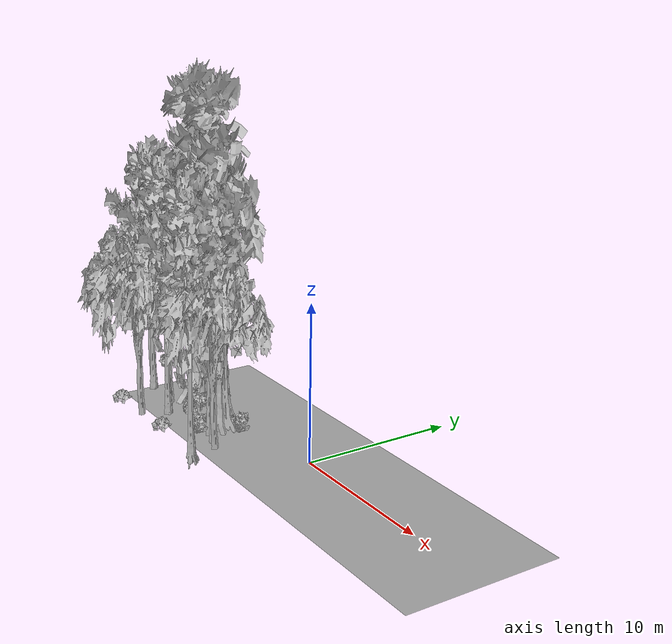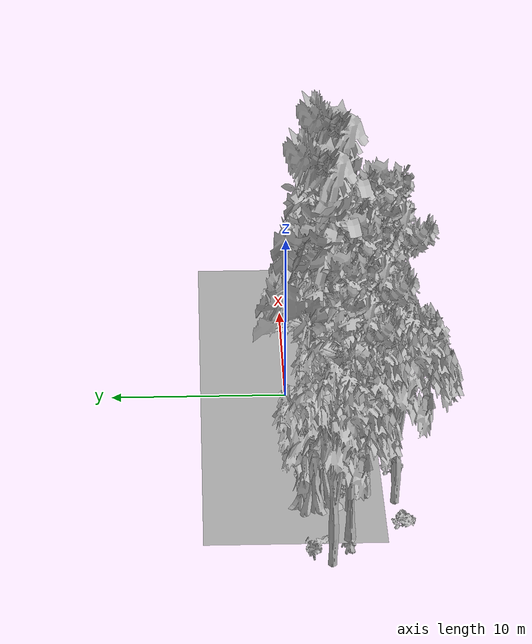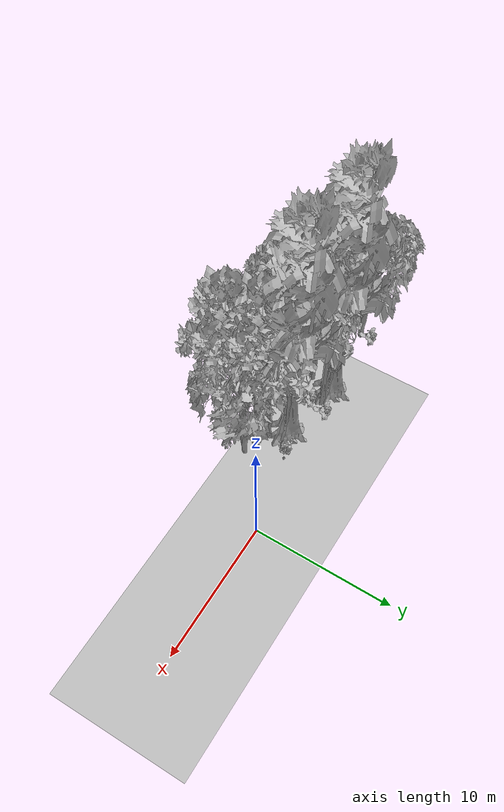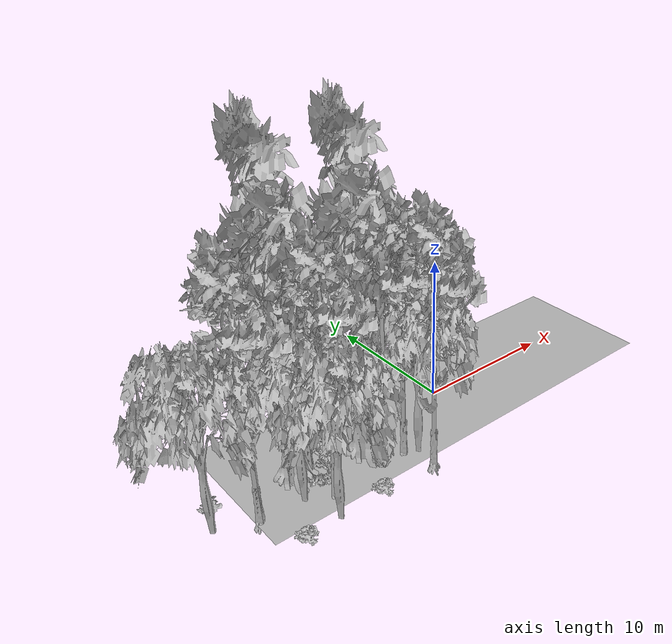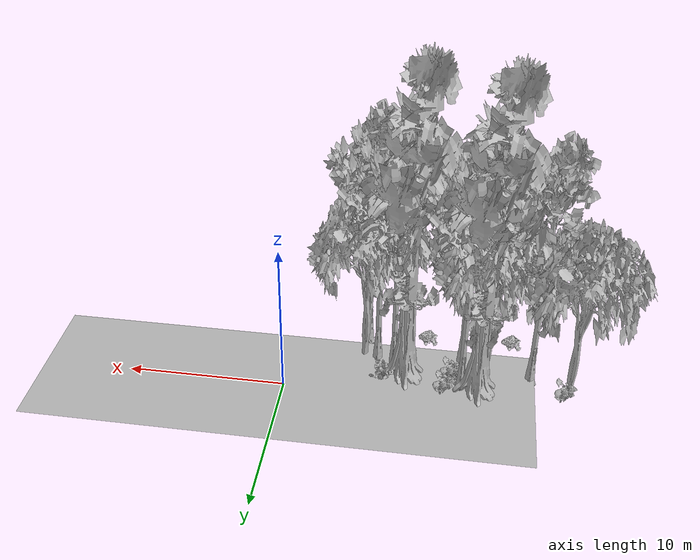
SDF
<sdf version="1.7">
 <world name="default">
  <model name="ground_plane">
   <static>1</static>
   <link name="link">
    <collision name="collision">
     <geometry><plane><normal>0 0 1</normal><size>100 100</size></plane></geometry>
     <surface><contact><ode><min_depth>0.01</min_depth><max_vel>0</max_vel></ode></contact></surface>
    </collision>
    <visual name="grass">
     <cast_shadows>0</cast_shadows>
     <geometry>
      <mesh>
       <scale>0.5814285714285714 0.18142857142857144 0.1</scale>
       <uri>file://grass_plane/meshes/grass_plane.dae</uri>
      </mesh>
     </geometry>
    </visual>
   </link>
  </model>
  <model name="Tree 2">
   <static>1</static>
   <pose>-11.0649128909362 -1.3359658038042035 0 1.57079 -0 0</pose>
   <link name="link">
    <collision name="collision">
     <geometry><mesh><scale>3.5 5 3.5</scale><uri>model://tree_9/meshes/tree_9.obj</uri></mesh></geometry>
    </collision>
    <visual name="visual">
     <geometry><mesh><scale>3.5 5 3.5</scale><uri>model://tree_9/meshes/tree_9.obj</uri></mesh></geometry>
    </visual>
   </link>
  </model>
  <model name="Tree 44">
   <static>1</static>
   <pose>-12.28613080616892 -1.3604573522858825 0 1.57079 -0 0</pose>
   <link name="link">
    <collision name="collision">
     <geometry><mesh><scale>3.5 5 3.5</scale><uri>model://tree_9/meshes/tree_9.obj</uri></mesh></geometry>
    </collision>
    <visual name="visual">
     <geometry><mesh><scale>3.5 5 3.5</scale><uri>model://tree_9/meshes/tree_9.obj</uri></mesh></geometry>
    </visual>
   </link>
  </model>
  <model name="Tree 132">
   <static>1</static>
   <pose>-17.867782301725683 -1.8405493716950563 0 1.57079 -0 0</pose>
   <link name="link">
    <collision name="collision">
     <geometry><mesh><scale>3.5 5 3.5</scale><uri>model://tree_2/meshes/tree_2.obj</uri></mesh></geometry>
    </collision>
    <visual name="visual">
     <geometry><mesh><scale>3.5 5 3.5</scale><uri>model://tree_2/meshes/tree_2.obj</uri></mesh></geometry>
    </visual>
   </link>
  </model>
  <model name="Tree 133">
   <static>1</static>
   <pose>-4.826754633418027 -5.437446782093666 0 1.57079 -0 0</pose>
   <link name="link">
    <collision name="collision">
     <geometry><mesh><scale>3.5 5 3.5</scale><uri>model://tree_9/meshes/tree_9.obj</uri></mesh></geometry>
    </collision>
    <visual name="visual">
     <geometry><mesh><scale>3.5 5 3.5</scale><uri>model://tree_9/meshes/tree_9.obj</uri></mesh></geometry>
    </visual>
   </link>
  </model>
  <model name="Tree 160">
   <static>1</static>
   <pose>-11.871474903291684 -5.495924710658599 0 1.57079 -0 0</pose>
   <link name="link">
    <collision name="collision">
     <geometry><mesh><scale>3.5 5 3.5</scale><uri>model://tree_2/meshes/tree_2.obj</uri></mesh></geometry>
    </collision>
    <visual name="visual">
     <geometry><mesh><scale>3.5 5 3.5</scale><uri>model://tree_2/meshes/tree_2.obj</uri></mesh></geometry>
    </visual>
   </link>
  </model>
  <model name="Tree 161">
   <static>1</static>
   <pose>-4.811960147837411 -3.908333345867618 0 1.57079 -0 0</pose>
   <link name="link">
    <collision name="collision">
     <geometry><mesh><scale>3.5 5 3.5</scale><uri>model://tree_2/meshes/tree_2.obj</uri></mesh></geometry>
    </collision>
    <visual name="visual">
     <geometry><mesh><scale>3.5 5 3.5</scale><uri>model://tree_2/meshes/tree_2.obj</uri></mesh></geometry>
    </visual>
   </link>
  </model>
  <model name="Tree 287">
   <static>1</static>
   <pose>-12.638921503179823 -3.0012000754578576 0 1.57079 -0 0</pose>
   <link name="link">
    <collision name="collision">
     <geometry><mesh><scale>3.5 5 3.5</scale><uri>model://tree_2/meshes/tree_2.obj</uri></mesh></geometry>
    </collision>
    <visual name="visual">
     <geometry><mesh><scale>3.5 5 3.5</scale><uri>model://tree_2/meshes/tree_2.obj</uri></mesh></geometry>
    </visual>
   </link>
  </model>
  <model name="Tree 304">
   <static>1</static>
   <pose>-7.5048635461284405 -1.9546367103184927 0 1.57079 -0 0</pose>
   <link name="link">
    <collision name="collision">
     <geometry><mesh><scale>3.5 5 3.5</scale><uri>model://tree_4/meshes/tree_4.obj</uri></mesh></geometry>
    </collision>
    <visual name="visual">
     <geometry><mesh><scale>3.5 5 3.5</scale><uri>model://tree_4/meshes/tree_4.obj</uri></mesh></geometry>
    </visual>
   </link>
  </model>
  <model name="Tree 338">
   <static>1</static>
   <pose>-12.08945469492415 -1.1157064773826093 0 1.57079 -0 0</pose>
   <link name="link">
    <collision name="collision">
     <geometry><mesh><scale>3.5 5 3.5</scale><uri>model://tree_4/meshes/tree_4.obj</uri></mesh></geometry>
    </collision>
    <visual name="visual">
     <geometry><mesh><scale>3.5 5 3.5</scale><uri>model://tree_4/meshes/tree_4.obj</uri></mesh></geometry>
    </visual>
   </link>
  </model>
  <model name="Tree 372">
   <static>1</static>
   <pose>-15.411677792625902 -2.859662806984229 0 1.57079 -0 0</pose>
   <link name="link">
    <collision name="collision">
     <geometry><mesh><scale>3.5 5 3.5</scale><uri>model://tree_9/meshes/tree_9.obj</uri></mesh></geometry>
    </collision>
    <visual name="visual">
     <geometry><mesh><scale>3.5 5 3.5</scale><uri>model://tree_9/meshes/tree_9.obj</uri></mesh></geometry>
    </visual>
   </link>
  </model>
  <model name="Tree 377">
   <static>1</static>
   <pose>-6.6732439385215585 -3.1676164422022914 0 1.57079 -0 0</pose>
   <link name="link">
    <collision name="collision">
     <geometry><mesh><scale>3.5 5 3.5</scale><uri>model://tree_9/meshes/tree_9.obj</uri></mesh></geometry>
    </collision>
    <visual name="visual">
     <geometry><mesh><scale>3.5 5 3.5</scale><uri>model://tree_9/meshes/tree_9.obj</uri></mesh></geometry>
    </visual>
   </link>
  </model>
  <model name="Tree 409">
   <static>1</static>
   <pose>-11.022231757544958 -3.919551545557857 0 1.57079 -0 0</pose>
   <link name="link">
    <collision name="collision">
     <geometry><mesh><scale>3.5 5 3.5</scale><uri>model://tree_9/meshes/tree_9.obj</uri></mesh></geometry>
    </collision>
    <visual name="visual">
     <geometry><mesh><scale>3.5 5 3.5</scale><uri>model://tree_9/meshes/tree_9.obj</uri></mesh></geometry>
    </visual>
   </link>
  </model>
  <model name="Tree 411">
   <static>1</static>
   <pose>-5.5974428334380875 -3.5230888612659133 0 1.57079 -0 0</pose>
   <link name="link">
    <collision name="collision">
     <geometry><mesh><scale>3.5 5 3.5</scale><uri>model://tree_9/meshes/tree_9.obj</uri></mesh></geometry>
    </collision>
    <visual name="visual">
     <geometry><mesh><scale>3.5 5 3.5</scale><uri>model://tree_9/meshes/tree_9.obj</uri></mesh></geometry>
    </visual>
   </link>
  </model>
  <model name="Bush 16">
   <static>1</static>
   <pose>-14.149203916411217 -5.735588681456893 0 1.57079 -0 0</pose>
   <link name="link">
    <collision name="collision">
     <geometry><mesh><scale>2 2 2</scale><uri>model://bush_3/meshes/bush_3.obj</uri></mesh></geometry>
     <surface><contact><collide_without_contact>false</collide_without_contact></contact></surface>
    </collision>
    <visual name="visual">
     <geometry><mesh><scale>2 2 2</scale><uri>model://bush_3/meshes/bush_3.obj</uri></mesh></geometry>
    </visual>
   </link>
  </model>
  <model name="Bush 58">
   <static>1</static>
   <pose>-10.665862802084241 -2.5356507093970126 0 1.57079 -0 0</pose>
   <link name="link">
    <collision name="collision">
     <geometry><mesh><scale>2 2 2</scale><uri>model://bush_2/meshes/bush_2.obj</uri></mesh></geometry>
     <surface><contact><collide_without_contact>false</collide_without_contact></contact></surface>
    </collision>
    <visual name="visual">
     <geometry><mesh><scale>2 2 2</scale><uri>model://bush_2/meshes/bush_2.obj</uri></mesh></geometry>
    </visual>
   </link>
  </model>
  <model name="Bush 109">
   <static>1</static>
   <pose>-9.852872566487086 -0.5507789687452131 0 1.57079 -0 0</pose>
   <link name="link">
    <collision name="collision">
     <geometry><mesh><scale>2 2 2</scale><uri>model://bush_0/meshes/bush_0.obj</uri></mesh></geometry>
     <surface><contact><collide_without_contact>false</collide_without_contact></contact></surface>
    </collision>
    <visual name="visual">
     <geometry><mesh><scale>2 2 2</scale><uri>model://bush_0/meshes/bush_0.obj</uri></mesh></geometry>
    </visual>
   </link>
  </model>
  <model name="Bush 176">
   <static>1</static>
   <pose>-11.151949310448188 -2.316144481553243 0 1.57079 -0 0</pose>
   <link name="link">
    <collision name="collision">
     <geometry><mesh><scale>2 2 2</scale><uri>model://bush_2/meshes/bush_2.obj</uri></mesh></geometry>
     <surface><contact><collide_without_contact>false</collide_without_contact></contact></surface>
    </collision>
    <visual name="visual">
     <geometry><mesh><scale>2 2 2</scale><uri>model://bush_2/meshes/bush_2.obj</uri></mesh></geometry>
    </visual>
   </link>
  </model>
  <model name="Bush 299">
   <static>1</static>
   <pose>-6.075003410387112 -1.4370200692143946 0 1.57079 -0 0</pose>
   <link name="link">
    <collision name="collision">
     <geometry><mesh><scale>2 2 2</scale><uri>model://bush_4/meshes/bush_4.obj</uri></mesh></geometry>
     <surface><contact><collide_without_contact>false</collide_without_contact></contact></surface>
    </collision>
    <visual name="visual">
     <geometry><mesh><scale>2 2 2</scale><uri>model://bush_4/meshes/bush_4.obj</uri></mesh></geometry>
    </visual>
   </link>
  </model>
  <model name="Bush 305">
   <static>1</static>
   <pose>-8.685615250088254 -5.467014967016922 0 1.57079 -0 0</pose>
   <link name="link">
    <collision name="collision">
     <geometry><mesh><scale>2 2 2</scale><uri>model://bush_3/meshes/bush_3.obj</uri></mesh></geometry>
     <surface><contact><collide_without_contact>false</collide_without_contact></contact></surface>
    </collision>
    <visual name="visual">
     <geometry><mesh><scale>2 2 2</scale><uri>model://bush_3/meshes/bush_3.obj</uri></mesh></geometry>
    </visual>
   </link>
  </model>
  <model name="Bush 307">
   <static>1</static>
   <pose>-7.31458503147784 -3.754134051258143 0 1.57079 -0 0</pose>
   <link name="link">
    <collision name="collision">
     <geometry><mesh><scale>2 2 2</scale><uri>model://bush_4/meshes/bush_4.obj</uri></mesh></geometry>
     <surface><contact><collide_without_contact>false</collide_without_contact></contact></surface>
    </collision>
    <visual name="visual">
     <geometry><mesh><scale>2 2 2</scale><uri>model://bush_4/meshes/bush_4.obj</uri></mesh></geometry>
    </visual>
   </link>
  </model>
  <model name="Bush 310">
   <static>1</static>
   <pose>-17.260936743382555 -0.8810196402011723 0 1.57079 -0 0</pose>
   <link name="link">
    <collision name="collision">
     <geometry><mesh><scale>2 2 2</scale><uri>model://bush_0/meshes/bush_0.obj</uri></mesh></geometry>
     <surface><contact><collide_without_contact>false</collide_without_contact></contact></surface>
    </collision>
    <visual name="visual">
     <geometry><mesh><scale>2 2 2</scale><uri>model://bush_0/meshes/bush_0.obj</uri></mesh></geometry>
    </visual>
   </link>
  </model>
  <model name="Bush 333">
   <static>1</static>
   <pose>-10.227863228836071 -1.944535209547583 0 1.57079 -0 0</pose>
   <link name="link">
    <collision name="collision">
     <geometry><mesh><scale>2 2 2</scale><uri>model://bush_0/meshes/bush_0.obj</uri></mesh></geometry>
     <surface><contact><collide_without_contact>false</collide_without_contact></contact></surface>
    </collision>
    <visual name="visual">
     <geometry><mesh><scale>2 2 2</scale><uri>model://bush_0/meshes/bush_0.obj</uri></mesh></geometry>
    </visual>
   </link>
  </model>
 </world>
</sdf>
